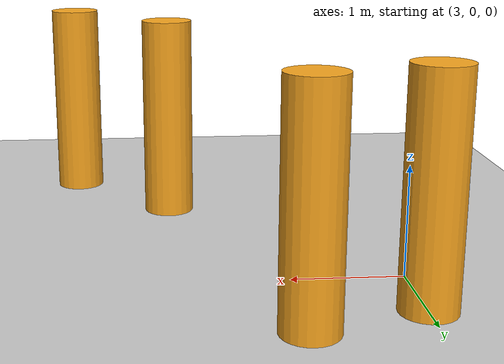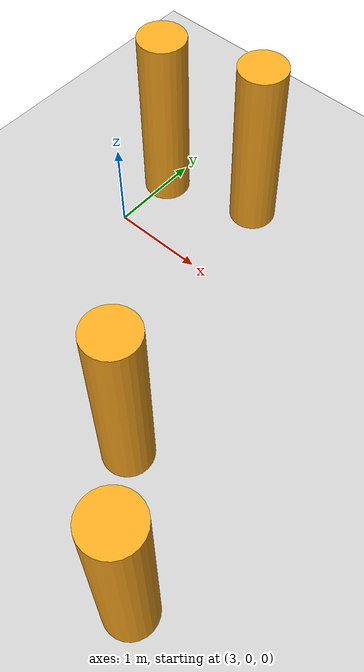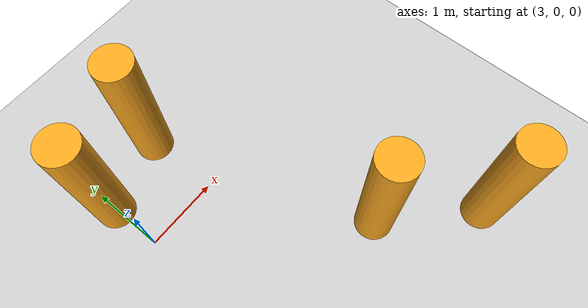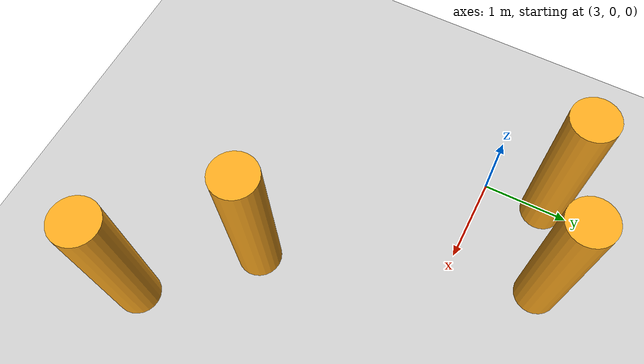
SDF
<?xml version="1.0" encoding="UTF-8"?>
<sdf version="1.6">
    <world name="Dynamic Obstacles">
        <!-- Light source and ground -->
        <include>
            <uri>model://ground_plane</uri>
        </include>
        <include>
            <uri>model://asphalt_plane</uri>
        </include>
        <include>
            <uri>model://sun</uri>
        </include>

        <!-- 4 Dynamic Obstacles -->
        <include>
            <uri>model://orange_pole</uri>
            <name>obstacle_0</name>
            <pose>3 0.7 1 0 0 0</pose>
            <plugin name="dynamic_obstacle" filename="libdynamic_obstacle.so">
                <point_0>3 5 0</point_0>
                <point_1>3 -5 0</point_1>
                <vel>2.0</vel>
            </plugin>
        </include>
        <include>
            <uri>model://orange_pole</uri>
            <name>obstacle_1</name>
            <pose>4 1 1 0 0 0</pose>
            <plugin name="dynamic_obstacle" filename="libdynamic_obstacle.so">
                <point_0>4 -5 0</point_0>
                <point_1>4 5 0</point_1>
                <vel>2.0</vel>
            </plugin>
        </include>
        <include>
            <uri>model://orange_pole</uri>
            <name>obstacle_2</name>
            <pose>5 -2 1 0 0 0</pose>
            <plugin name="dynamic_obstacle" filename="libdynamic_obstacle.so">
                <point_0>5 5 0</point_0>
                <point_1>5 -5 0</point_1>
                <vel>2.0</vel>
            </plugin>
        </include>
        <include>
            <uri>model://orange_pole</uri>
            <name>obstacle_3</name>
            <pose>6 -3 1 0 0 0</pose>
            <plugin name="dynamic_obstacle" filename="libdynamic_obstacle.so">
                <point_0>6 -5 0</point_0>
                <point_1>6 5 0</point_1>
                <vel>2.0</vel>
            </plugin>
        </include>
    </world>
</sdf>

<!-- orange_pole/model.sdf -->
<sdf version='1.6'>

  <model name='orange_pole'>

    <pose>0 0 1 0 0 0</pose>
    <link name='pole'>
      <inertial>
        <mass>1</mass>
        <inertia>
          <ixx>0.145833</ixx>
          <iyy>0.145833</iyy>
          <izz>0.125</izz>
          <ixy>0</ixy>
          <ixz>0</ixz>
          <iyz>0</iyz>
        </inertia>
      </inertial>

      <gravity>0</gravity>
      <self_collide>0</self_collide>
      <kinematic>0</kinematic>
      <enable_wind>0</enable_wind>

      <visual name='pole_visual'>
        <geometry>
          <cylinder>
            <radius>0.25</radius>
            <length>2</length>
          </cylinder>
        </geometry>
        <material>
          <lighting>1</lighting>
          <script>
            <uri>file://media/materials/scripts/gazebo.material</uri>
            <name>Gazebo/Grey</name>
          </script>
          <shader type='vertex'>
            <normal_map>__default__</normal_map>
          </shader>
          <ambient>0.88 0.59 0.11 1</ambient>
          <diffuse>0.99 0.66 0.12 1</diffuse>
          <specular>0.01 0.01 0.01 1</specular>
          <emissive>0 0 0 1</emissive>
        </material>
        <transparency>0</transparency>
        <cast_shadows>1</cast_shadows>
      </visual>

      <collision name='collision'>
        <geometry>
          <cylinder>
            <radius>0.25</radius>
            <length>2</length>
          </cylinder>
        </geometry>
      </collision>
    </link>

    <static>0</static>

    <!-- Dynamic obstacle plugin -->
  </model>
</sdf>
